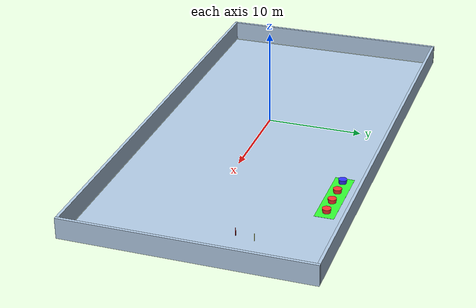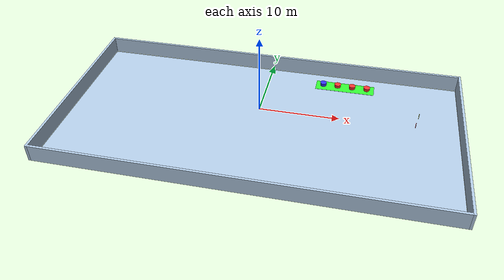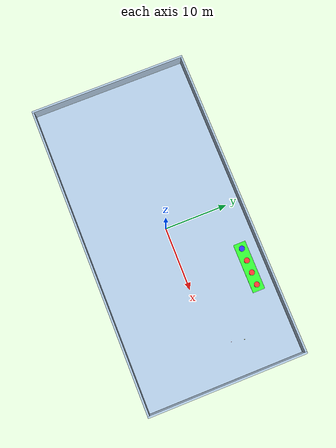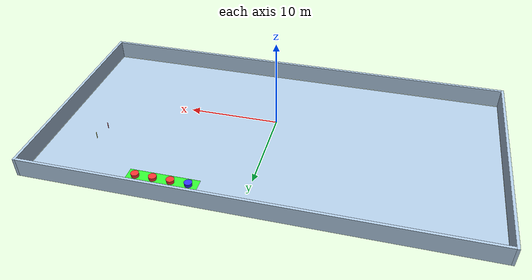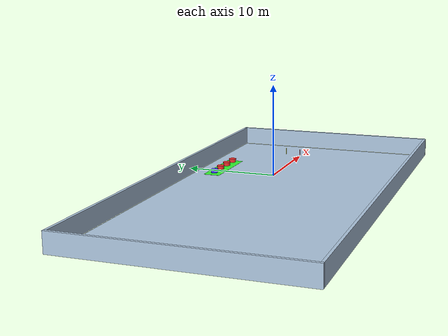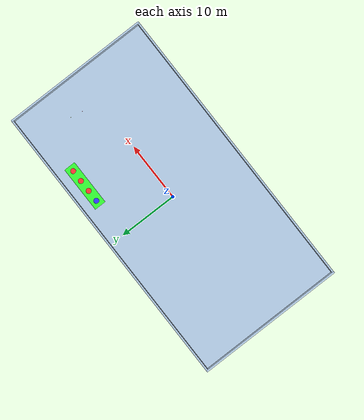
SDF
<sdf version="1.8">
 <world name="pool_world">
  <plugin filename="ignition-gazebo-physics-system" name="gz::sim::systems::Physics"/>
  <plugin filename="ignition-gazebo-user-commands-system" name="gz::sim::systems::UserCommands"/>
  <plugin filename="ignition-gazebo-scene-broadcaster-system" name="gz::sim::systems::SceneBroadcaster"/>
  <plugin filename="ignition-gazebo-sensors-system" name="gz::sim::systems::Sensors">
   <render_engine>ogre2</render_engine>
  </plugin>
  <plugin filename="ignition-gazebo-imu-system" name="gz::sim::systems::Imu"/>
  <plugin filename="ignition-gazebo-magnetometer-system" name="gz::sim::systems::Magnetometer"/>
  <gravity>0 0 -9.81</gravity>
  <magnetic_field>6e-6 2e-5 -4e-5</magnetic_field>
  <atmosphere type="adiabatic"/>
  <scene><ambient>0.4 0.4 0.45 1</ambient><background>0.85 0.9 1 1</background><shadows>true</shadows></scene>
  <physics name="dart" type="ignition-physics-dartsim">
   <max_step_size>0.001</max_step_size>
   <real_time_factor>1.0</real_time_factor>
   <real_time_update_rate>1000</real_time_update_rate>
  </physics>
  <include><uri>https://fuel.gazebosim.org/1.0/OpenRobotics/models/Sun</uri></include>
  <model name="pool_structure">
   <static>true</static>
   <pose>0 0 -2.2 0 0 0</pose>
   <include><uri>model://pool_ground25</uri></include>
   <link name="wall_x_pos">
    <pose>25.15 0 1.1 0 0 0</pose>
    <collision name="col"><geometry><box><size>0.3 25.6 2.2</size></box></geometry></collision>
    <visual name="vis">
     <geometry><box><size>0.3 25.6 2.2</size></box></geometry>
     <material>
      <ambient>0.7 0.8 0.9 1</ambient>
      <diffuse>0.7 0.8 0.9 1</diffuse>
      <specular>0.3 0.3 0.3 1</specular>
      <emissive>0 0 0 1</emissive>
     </material>
    </visual>
   </link>
   <link name="wall_x_neg">
    <pose>-25.15 0 1.1 0 0 0</pose>
    <collision name="col"><geometry><box><size>0.3 25.6 2.2</size></box></geometry></collision>
    <visual name="vis">
     <geometry><box><size>0.3 25.6 2.2</size></box></geometry>
     <material>
      <ambient>0.7 0.8 0.9 1</ambient>
      <diffuse>0.7 0.8 0.9 1</diffuse>
      <specular>0.3 0.3 0.3 1</specular>
      <emissive>0 0 0 1</emissive>
     </material>
    </visual>
   </link>
   <link name="wall_y_pos">
    <pose>0 12.65 1.1 0 0 0</pose>
    <collision name="col"><geometry><box><size>50 0.3 2.2</size></box></geometry></collision>
    <visual name="vis">
     <geometry><box><size>50 0.3 2.2</size></box></geometry>
     <material>
      <ambient>0.7 0.8 0.9 1</ambient>
      <diffuse>0.7 0.8 0.9 1</diffuse>
      <specular>0.3 0.3 0.3 1</specular>
      <emissive>0 0 0 1</emissive>
     </material>
    </visual>
   </link>
   <link name="wall_y_neg">
    <pose>0 -12.65 1.1 0 0 0</pose>
    <collision name="col"><geometry><box><size>50 0.3 2.2</size></box></geometry></collision>
    <visual name="vis">
     <geometry><box><size>50 0.3 2.2</size></box></geometry>
     <material>
      <ambient>0.7 0.8 0.9 1</ambient>
      <diffuse>0.7 0.8 0.9 1</diffuse>
      <specular>0.3 0.3 0.3 1</specular>
      <emissive>0 0 0 1</emissive>
     </material>
    </visual>
   </link>
  </model>
  <plugin filename="ignition-gazebo-buoyancy-system" name="ignition::gazebo::systems::Buoyancy">
   <graded_buoyancy>
    <default_density>1000</default_density>
    <density_change><above_depth>0</above_depth><density>1</density></density_change>
   </graded_buoyancy>
  </plugin>
  <include><uri>model://orange_flare</uri><pose>7 -3 -2.2 0 -0 0</pose><static>1</static></include>
  <include><uri>model://green_mat</uri><pose>10 10 -2.2 0 -0 0</pose><static>1</static></include>
  <include><uri>model://blue_drum</uri><pose>7 10 -2.2 0 -0 0</pose><static>1</static></include>
  <include>
   <uri>model://red_drum</uri>
   <name>red_drum0</name>
   <pose>9 10 -2.2 0 -0 0</pose>
   <static>1</static>
  </include>
  <include>
   <uri>model://red_drum</uri>
   <name>red_drum1</name>
   <pose>11 10 -2.2 0 -0 0</pose>
   <static>1</static>
  </include>
  <include>
   <uri>model://red_drum</uri>
   <name>red_drum2</name>
   <pose>13 10 -2.2 0 -0 0</pose>
   <static>1</static>
  </include>
  <include><uri>model://golf_ball</uri><pose>7 10 -2.2 0 -0 0</pose></include>
  <include><uri>model://yellow_flare</uri><pose>20 5 -2.2 0 -0 0</pose></include>
  <include><uri>model://blue_flare</uri><pose>19.8 4 -2.2 0 -0 0</pose></include>
  <include><uri>model://red_flare</uri><pose>19.6 3 -2.2 0 -0 0</pose></include>
 </world>
</sdf>

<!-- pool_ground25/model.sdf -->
<sdf version="1.7">
  <model name="pool_ground25">
    <static>true</static>

    <link name="pool_floor">
      <collision name="collision">
        <geometry>
          <plane>
            <normal>0 0 1</normal>
            <size>50 25</size>
          </plane>
        </geometry>
        <surface>
          <contact>
            <collide_bitmask>0x01</collide_bitmask>
          </contact>
          <friction>
            <ode>
              <mu>0.8</mu>
              <mu2>0.8</mu2>
            </ode>
          </friction>
        </surface>
      </collision>

      <visual name="visual">
        <geometry>
          <plane>
            <normal>0 0 1</normal>
            <size>50 25</size>
          </plane>
        </geometry>
        <material>
          <!-- Direct texture approach -->
          <ambient>0.7 0.8 0.9 1</ambient>
          <diffuse>0.7 0.8 0.9 1</diffuse>
          <specular>0.3 0.3 0.3 1</specular>
          <emissive>0 0 0 1</emissive>
          <pbr>
            <metal>
              <albedo_map>model://pool_ground25/materials/textures/pool_lanes.png</albedo_map>
            </metal>
          </pbr>
        </material>
      </visual>
    </link>
  </model>
</sdf>

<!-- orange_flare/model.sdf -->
<sdf version='1.7'>
  <model name='orange_flare'>
    <link name='link'>
      <inertial>
        <mass>1</mass>
        <inertia>
          <ixx>0.335626</ixx>
          <ixy>0</ixy>
          <ixz>0</ixz>
          <iyy>0.335626</iyy>
          <iyz>0</iyz>
          <izz>0.326156</izz>
        </inertia>
        <pose>0 0 0 0 -0 0</pose>
      </inertial>
      <self_collide>0</self_collide>
      <enable_wind>0</enable_wind>
      <kinematic>0</kinematic>
      <pose>0 0 0 0 -0 0</pose>
      <gravity>1</gravity>
      <visual name='visual'>
        <geometry>
          <cylinder>
            <radius>0.075</radius>
            <length>1.5</length>
          </cylinder>
        </geometry>
        <material>
          <ambient>1 0.2 0 1</ambient>
          <diffuse>1 0.2 0 1</diffuse>
          <specular>1 0.2 0 1</specular>
        </material>
        <pose>0 0 -1.25 0 -0 0</pose>
        <transparency>0</transparency>
        <cast_shadows>1</cast_shadows>
      </visual>
      <collision name='collision'>
        <laser_retro>0</laser_retro>
        <max_contacts>10</max_contacts>
        <pose>0 0 -1.25 0 -0 0</pose>
        <geometry>
          <cylinder>
            <radius>0.075</radius>
            <length>1.5</length>
          </cylinder>
        </geometry>
        <surface>
          <friction>
            <ode>
              <mu>1</mu>
              <mu2>1</mu2>
              <fdir1>0 0 0</fdir1>
              <slip1>0</slip1>
              <slip2>0</slip2>
            </ode>
            <torsional>
              <coefficient>1</coefficient>
              <patch_radius>0</patch_radius>
              <surface_radius>0</surface_radius>
              <use_patch_radius>1</use_patch_radius>
              <ode>
                <slip>0</slip>
              </ode>
            </torsional>
          </friction>
          <bounce>
            <restitution_coefficient>0</restitution_coefficient>
            <threshold>1e+06</threshold>
          </bounce>
          <contact>
            <collide_without_contact>0</collide_without_contact>
            <collide_without_contact_bitmask>1</collide_without_contact_bitmask>
            <collide_bitmask>1</collide_bitmask>
            <ode>
              <soft_cfm>0</soft_cfm>
              <soft_erp>0.2</soft_erp>
              <kp>1e+13</kp>
              <kd>1</kd>
              <max_vel>0.01</max_vel>
              <min_depth>0</min_depth>
            </ode>
            <bullet>
              <split_impulse>1</split_impulse>
              <split_impulse_penetration_threshold>-0.01</split_impulse_penetration_threshold>
              <soft_cfm>0</soft_cfm>
              <soft_erp>0.2</soft_erp>
              <kp>1e+13</kp>
              <kd>1</kd>
            </bullet>
          </contact>
        </surface>
      </collision>
    </link>
    <static>1</static>
    <allow_auto_disable>1</allow_auto_disable>
  </model>
</sdf>

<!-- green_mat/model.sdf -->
<sdf version='1.7'>
  <model name='green_mat'>
    <link name='link_1'>
      <inertial>
        <mass>1</mass>
        <inertia>
          <ixx>0.166667</ixx>
          <ixy>0</ixy>
          <ixz>0</ixz>
          <iyy>0.166667</iyy>
          <iyz>0</iyz>
          <izz>0.166667</izz>
        </inertia>
        <pose>0 0 0 0 -0 0</pose>
      </inertial>
      <pose>0 0 0 0 -0 0</pose>
      <gravity>1</gravity>
      <self_collide>0</self_collide>
      <kinematic>0</kinematic>
      <enable_wind>0</enable_wind>
      <visual name='visual'>
        <pose>0 0 0 0 -0 0</pose>
        <geometry>
          <box>
            <size>8 2 0.01</size>
          </box>
        </geometry>
        <material>
          <ambient>0.1 0.5 0.1 1</ambient>
          <diffuse>0.2 1 0.2 1</diffuse>
          <specular>0.01 0.01 0.01 1</specular>
          <emissive>0 0 0 1</emissive>
        </material>
        <transparency>0</transparency>
        <cast_shadows>1</cast_shadows>
      </visual>
      <collision name='collision'>
        <laser_retro>0</laser_retro>
        <max_contacts>10</max_contacts>
        <pose>0 0 0 0 -0 0</pose>
        <geometry>
          <box>
            <size>8 2 0.01</size>
          </box>
        </geometry>
        <surface>
          <friction>
            <ode>
              <mu>1</mu>
              <mu2>1</mu2>
              <fdir1>0 0 0</fdir1>
              <slip1>0</slip1>
              <slip2>0</slip2>
            </ode>
            <torsional>
              <coefficient>1</coefficient>
              <patch_radius>0</patch_radius>
              <surface_radius>0</surface_radius>
              <use_patch_radius>1</use_patch_radius>
              <ode>
                <slip>0</slip>
              </ode>
            </torsional>
          </friction>
          <bounce>
            <restitution_coefficient>0</restitution_coefficient>
            <threshold>1e+06</threshold>
          </bounce>
          <contact>
            <collide_without_contact>0</collide_without_contact>
            <collide_without_contact_bitmask>1</collide_without_contact_bitmask>
            <collide_bitmask>1</collide_bitmask>
            <ode>
              <soft_cfm>0</soft_cfm>
              <soft_erp>0.2</soft_erp>
              <kp>1e+13</kp>
              <kd>1</kd>
              <max_vel>0.01</max_vel>
              <min_depth>0</min_depth>
            </ode>
            <bullet>
              <split_impulse>1</split_impulse>
              <split_impulse_penetration_threshold>-0.01</split_impulse_penetration_threshold>
              <soft_cfm>0</soft_cfm>
              <soft_erp>0.2</soft_erp>
              <kp>1e+13</kp>
              <kd>1</kd>
            </bullet>
          </contact>
        </surface>
      </collision>
    </link>
    <static>1</static>
    <allow_auto_disable>1</allow_auto_disable>
  </model>
</sdf>

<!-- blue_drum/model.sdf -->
<sdf version='1.7'>
  <model name='blue_drum'>
    <link name='link_1'>
      <inertial>
        <mass>1</mass>
        <inertia>
          <ixx>0.166667</ixx>
          <ixy>0</ixy>
          <ixz>0</ixz>
          <iyy>0.166667</iyy>
          <iyz>0</iyz>
          <izz>0.166667</izz>
        </inertia>
        <pose>0 0 0 0 -0 0</pose>
      </inertial>
      <pose>0 0 0 1.5708 -0 0</pose>
      <gravity>1</gravity>
      <self_collide>0</self_collide>
      <kinematic>0</kinematic>
      <enable_wind>0</enable_wind>
      <visual name='visual'>
        <pose>0 0 0 0 -0 0</pose>
        <geometry>
          <mesh>
            <uri>model://blue_drum/meshes/drum.obj</uri>
            <scale>0.4 0.4 0.4</scale>
          </mesh>
        </geometry>
        <material>
          <lighting>1</lighting>
          <script>
            <uri>file://media/materials/scripts/gazebo.material</uri>
            <name>Gazebo/Grey</name>
          </script>
          <shader type='pixel'>
            <normal_map>__default__</normal_map>
          </shader>
          <ambient>0.1 0.1 0.5 1</ambient>
          <diffuse>0.2 0.2 1 1</diffuse>
          <specular>0.01 0.01 0.01 1</specular>
          <emissive>0 0 0 1</emissive>
        </material>
        <transparency>0</transparency>
        <cast_shadows>1</cast_shadows>
      </visual>
      <collision name='collision'>
        <laser_retro>0</laser_retro>
        <max_contacts>10</max_contacts>
        <pose>0 0 0 0 -0 0</pose>
        <geometry>
          <mesh>
            <uri>model://blue_drum/meshes/drum.obj</uri>
            <scale>0.4 0.4 0.4</scale>
          </mesh>
        </geometry>
        <surface>
          <friction>
            <ode>
              <mu>1</mu>
              <mu2>1</mu2>
              <fdir1>0 0 0</fdir1>
              <slip1>0</slip1>
              <slip2>0</slip2>
            </ode>
            <torsional>
              <coefficient>1</coefficient>
              <patch_radius>0</patch_radius>
              <surface_radius>0</surface_radius>
              <use_patch_radius>1</use_patch_radius>
              <ode>
                <slip>0</slip>
              </ode>
            </torsional>
          </friction>
          <bounce>
            <restitution_coefficient>0</restitution_coefficient>
            <threshold>1e+06</threshold>
          </bounce>
          <contact>
            <collide_without_contact>0</collide_without_contact>
            <collide_without_contact_bitmask>1</collide_without_contact_bitmask>
            <collide_bitmask>1</collide_bitmask>
            <ode>
              <soft_cfm>0</soft_cfm>
              <soft_erp>0.2</soft_erp>
              <kp>1e+13</kp>
              <kd>1</kd>
              <max_vel>0.01</max_vel>
              <min_depth>0</min_depth>
            </ode>
            <bullet>
              <split_impulse>1</split_impulse>
              <split_impulse_penetration_threshold>-0.01</split_impulse_penetration_threshold>
              <soft_cfm>0</soft_cfm>
              <soft_erp>0.2</soft_erp>
              <kp>1e+13</kp>
              <kd>1</kd>
            </bullet>
          </contact>
        </surface>
      </collision>
    </link>
    <static>1</static>
    <allow_auto_disable>1</allow_auto_disable>
  </model>
</sdf>

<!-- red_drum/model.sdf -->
<sdf version='1.7'>
  <model name='red_drum'>
    <link name='link_2'>
      <inertial>
        <mass>1</mass>
        <inertia>
          <ixx>0.166667</ixx>
          <ixy>0</ixy>
          <ixz>0</ixz>
          <iyy>0.166667</iyy>
          <iyz>0</iyz>
          <izz>0.166667</izz>
        </inertia>
        <pose>0 0 0 0 -0 0</pose>
      </inertial>
      <pose>0 0 0 1.5708 -0 0</pose>
      <gravity>1</gravity>
      <self_collide>0</self_collide>
      <kinematic>0</kinematic>
      <enable_wind>0</enable_wind>
      <visual name='visual'>
        <pose>0 0 0 0 -0 0</pose>
        <geometry>
          <mesh>
            <uri>model://blue_drum/meshes/drum.obj</uri>
            <scale>0.4 0.4 0.4</scale>
          </mesh>
        </geometry>
        <material>
          <lighting>1</lighting>
          <script>
            <uri>file://media/materials/scripts/gazebo.material</uri>
            <name>Gazebo/Grey</name>
          </script>
          <shader type='pixel'>
            <normal_map>__default__</normal_map>
          </shader>
          <ambient>0.5 0.1 0.1 1</ambient>
          <diffuse>1 0.2 0.2 1</diffuse>
          <specular>0.01 0.01 0.01 1</specular>
          <emissive>0 0 0 1</emissive>
        </material>
        <transparency>0</transparency>
        <cast_shadows>1</cast_shadows>
      </visual>
      <collision name='collision'>
        <laser_retro>0</laser_retro>
        <max_contacts>10</max_contacts>
        <pose>0 0 0 0 -0 0</pose>
        <geometry>
          <mesh>
            <uri>model://blue_drum/meshes/drum.obj</uri>
            <scale>0.4 0.4 0.4</scale>
          </mesh>
        </geometry>
        <surface>
          <friction>
            <ode>
              <mu>1</mu>
              <mu2>1</mu2>
              <fdir1>0 0 0</fdir1>
              <slip1>0</slip1>
              <slip2>0</slip2>
            </ode>
            <torsional>
              <coefficient>1</coefficient>
              <patch_radius>0</patch_radius>
              <surface_radius>0</surface_radius>
              <use_patch_radius>1</use_patch_radius>
              <ode>
                <slip>0</slip>
              </ode>
            </torsional>
          </friction>
          <bounce>
            <restitution_coefficient>0</restitution_coefficient>
            <threshold>1e+06</threshold>
          </bounce>
          <contact>
            <collide_without_contact>0</collide_without_contact>
            <collide_without_contact_bitmask>1</collide_without_contact_bitmask>
            <collide_bitmask>1</collide_bitmask>
            <ode>
              <soft_cfm>0</soft_cfm>
              <soft_erp>0.2</soft_erp>
              <kp>1e+13</kp>
              <kd>1</kd>
              <max_vel>0.01</max_vel>
              <min_depth>0</min_depth>
            </ode>
            <bullet>
              <split_impulse>1</split_impulse>
              <split_impulse_penetration_threshold>-0.01</split_impulse_penetration_threshold>
              <soft_cfm>0</soft_cfm>
              <soft_erp>0.2</soft_erp>
              <kp>1e+13</kp>
              <kd>1</kd>
            </bullet>
          </contact>
        </surface>
      </collision>
    </link>
    <static>1</static>
    <allow_auto_disable>1</allow_auto_disable>
  </model>
</sdf>

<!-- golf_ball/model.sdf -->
<sdf version='1.7'>
  <model name='golf_ball'>
    <link name='link_0'>
      <inertial>
        <mass>0.0460639</mass>
        <inertia>
          <ixx>8.4e-06</ixx>
          <ixy>0</ixy>
          <ixz>0</ixz>
          <iyy>8.4e-06</iyy>
          <iyz>0</iyz>
          <izz>8.4e-06</izz>
        </inertia>
        <pose>0 0 0 0 -0 0</pose>
      </inertial>
      <pose>0 0 0.3 0 -0 0</pose>
      <gravity>1</gravity>
      <self_collide>0</self_collide>
      <kinematic>0</kinematic>
      <enable_wind>0</enable_wind>
      <visual name='visual'>
        <pose>0 0 0 0 -0 0</pose>
        <geometry>
          <sphere>
            <radius>0.02135</radius>
          </sphere>
        </geometry>
        <material>
          <lighting>1</lighting>
          <script>
            <uri>file://media/materials/scripts/gazebo.material</uri>
            <name>Gazebo/Grey</name>
          </script>
          <shader type='pixel'>
            <normal_map>__default__</normal_map>
          </shader>
          <ambient>1 1 1 1</ambient>
          <diffuse>1 1 1 1</diffuse>
          <specular>1 1 1 1</specular>
          <emissive>0 0 0 1</emissive>
        </material>
        <transparency>0</transparency>
        <cast_shadows>1</cast_shadows>
      </visual>
      <collision name='collision'>
        <laser_retro>0</laser_retro>
        <max_contacts>10</max_contacts>
        <pose>0 0 0 0 -0 0</pose>
        <geometry>
          <sphere>
            <radius>0.02135</radius>
          </sphere>
        </geometry>
        <surface>
          <friction>
            <ode>
              <mu>1</mu>
              <mu2>1</mu2>
              <fdir1>0 0 0</fdir1>
              <slip1>0</slip1>
              <slip2>0</slip2>
            </ode>
            <torsional>
              <coefficient>1</coefficient>
              <patch_radius>0</patch_radius>
              <surface_radius>0</surface_radius>
              <use_patch_radius>1</use_patch_radius>
              <ode>
                <slip>0</slip>
              </ode>
            </torsional>
          </friction>
          <bounce>
            <restitution_coefficient>0</restitution_coefficient>
            <threshold>1e+06</threshold>
          </bounce>
          <contact>
            <collide_without_contact>0</collide_without_contact>
            <collide_without_contact_bitmask>1</collide_without_contact_bitmask>
            <collide_bitmask>1</collide_bitmask>
            <ode>
              <soft_cfm>0</soft_cfm>
              <soft_erp>0.2</soft_erp>
              <kp>1e+13</kp>
              <kd>1</kd>
              <max_vel>0.01</max_vel>
              <min_depth>0</min_depth>
            </ode>
            <bullet>
              <split_impulse>1</split_impulse>
              <split_impulse_penetration_threshold>-0.01</split_impulse_penetration_threshold>
              <soft_cfm>0</soft_cfm>
              <soft_erp>0.2</soft_erp>
              <kp>1e+13</kp>
              <kd>1</kd>
            </bullet>
          </contact>
        </surface>
      </collision>
    </link>
    <static>0</static>
    <allow_auto_disable>1</allow_auto_disable>
  </model>
</sdf>

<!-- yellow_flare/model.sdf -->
<sdf version='1.7'>
  <model name='yellow_flare'>
    <link name='link'>
      <inertial>
        <mass>1</mass>
        <inertia>
          <ixx>0.145833</ixx>
          <ixy>0</ixy>
          <ixz>0</ixz>
          <iyy>0.145833</iyy>
          <iyz>0</iyz>
          <izz>0.125</izz>
        </inertia>
        <pose>0 0 0 0 0 0</pose>
      </inertial>
      <self_collide>0</self_collide>
      <enable_wind>0</enable_wind>
      <kinematic>0</kinematic>
      <pose>0 0 0.4 0 0 0</pose>
      <gravity>1</gravity>
      <visual name='visual'>
        <geometry>
          <cylinder>
            <radius>0.03</radius>
            <length>0.8</length>
          </cylinder>
        </geometry>
        <material>
          <ambient>1 1 0 1</ambient>
          <diffuse>0.7 0.7 0.0 1</diffuse>
          <specular>0.01 0.01 0.00 1</specular>
          <emissive>0 0 0 1</emissive>
        </material>
        <pose>0 0 0 0 -0 0</pose>
        <transparency>0</transparency>
        <cast_shadows>1</cast_shadows>
      </visual>
      <collision name='collision1'>
        <laser_retro>0</laser_retro>
        <max_contacts>10</max_contacts>
        <pose>0 0 0 0 -0 0</pose>
        <geometry>
          <cylinder>
            <radius>0.03</radius>
            <length>0.8</length>
          </cylinder>
        </geometry>
        <surface>
          <friction>
            <ode>
              <mu>1</mu>
              <mu2>1</mu2>
              <fdir1>0 0 0</fdir1>
              <slip1>0</slip1>
              <slip2>0</slip2>
            </ode>
            <torsional>
              <coefficient>1</coefficient>
              <patch_radius>0</patch_radius>
              <surface_radius>0</surface_radius>
              <use_patch_radius>1</use_patch_radius>
              <ode>
                <slip>0</slip>
              </ode>
            </torsional>
          </friction>
          <bounce>
            <restitution_coefficient>0</restitution_coefficient>
            <threshold>1e+06</threshold>
          </bounce>
          <contact>
            <collide_without_contact>0</collide_without_contact>
            <collide_without_contact_bitmask>1</collide_without_contact_bitmask>
            <collide_bitmask>1</collide_bitmask>
            <ode>
              <soft_cfm>0</soft_cfm>
              <soft_erp>0.2</soft_erp>
              <kp>1e+13</kp>
              <kd>1</kd>
              <max_vel>0.01</max_vel>
              <min_depth>0</min_depth>
            </ode>
            <bullet>
              <split_impulse>1</split_impulse>
              <split_impulse_penetration_threshold>-0.01</split_impulse_penetration_threshold>
              <soft_cfm>0</soft_cfm>
              <soft_erp>0.2</soft_erp>
              <kp>1e+13</kp>
              <kd>1</kd>
            </bullet>
          </contact>
        </surface>
      </collision>
      <collision name='collision2'>
        <laser_retro>0</laser_retro>
        <max_contacts>10</max_contacts>
        <pose>0 0 -0.39 0 0 -0</pose>
        <geometry>
          <cylinder>
            <radius>0.08</radius>
            <length>0.02</length>
          </cylinder>
        </geometry>
        <surface>
          <friction>
            <ode>
              <mu>1</mu>
              <mu2>1</mu2>
              <fdir1>0 0 0</fdir1>
              <slip1>0</slip1>
              <slip2>0</slip2>
            </ode>
            <torsional>
              <coefficient>1</coefficient>
              <patch_radius>0</patch_radius>
              <surface_radius>0</surface_radius>
              <use_patch_radius>1</use_patch_radius>
              <ode>
                <slip>0</slip>
              </ode>
            </torsional>
          </friction>
          <bounce>
            <restitution_coefficient>0</restitution_coefficient>
            <threshold>1e+06</threshold>
          </bounce>
          <contact>
            <collide_without_contact>0</collide_without_contact>
            <collide_without_contact_bitmask>1</collide_without_contact_bitmask>
            <collide_bitmask>1</collide_bitmask>
            <ode>
              <soft_cfm>0</soft_cfm>
              <soft_erp>0.2</soft_erp>
              <kp>1e+13</kp>
              <kd>1</kd>
              <max_vel>0.01</max_vel>
              <min_depth>0</min_depth>
            </ode>
            <bullet>
              <split_impulse>1</split_impulse>
              <split_impulse_penetration_threshold>-0.01</split_impulse_penetration_threshold>
              <soft_cfm>0</soft_cfm>
              <soft_erp>0.2</soft_erp>
              <kp>1e+13</kp>
              <kd>1</kd>
            </bullet>
          </contact>
        </surface>
      </collision>
    </link>
    <static>0</static>
    <allow_auto_disable>1</allow_auto_disable>
  </model>
</sdf>

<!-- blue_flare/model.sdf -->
<sdf version='1.7'>
  <model name='blue_flare'>
    <link name='link'>
      <inertial>
        <mass>1</mass>
        <inertia>
          <ixx>0.335626</ixx>
          <ixy>0</ixy>
          <ixz>0</ixz>
          <iyy>0.335626</iyy>
          <iyz>0</iyz>
          <izz>0.326156</izz>
        </inertia>
        <pose>0 0 0 0 -0 0</pose>
      </inertial>
      <self_collide>0</self_collide>
      <enable_wind>0</enable_wind>
      <kinematic>0</kinematic>
      <pose>0 0 0 0 -0 0</pose>
      <gravity>1</gravity>
      <visual name='visual'>
        <geometry>
          <cylinder>
            <radius>0.075</radius>
            <length>1.5</length>
          </cylinder>
        </geometry>
        <material>
          <ambient>0.01 0.71 0.01 1</ambient>
          <diffuse>0.01 0.71 0.01 1</diffuse>
          <specular>0.01 0.71 0.01 1</specular>
        </material>
        <pose>0 0 -1.25 0 -0 0</pose>
        <transparency>0</transparency>
        <cast_shadows>1</cast_shadows>
      </visual>
      <collision name='collision'>
        <laser_retro>0</laser_retro>
        <max_contacts>10</max_contacts>
        <pose>0 0 -1.25 0 -0 0</pose>
        <geometry>
          <cylinder>
            <radius>0.075</radius>
            <length>1.5</length>
          </cylinder>
        </geometry>
        <surface>
          <friction>
            <ode>
              <mu>1</mu>
              <mu2>1</mu2>
              <fdir1>0 0 0</fdir1>
              <slip1>0</slip1>
              <slip2>0</slip2>
            </ode>
            <torsional>
              <coefficient>1</coefficient>
              <patch_radius>0</patch_radius>
              <surface_radius>0</surface_radius>
              <use_patch_radius>1</use_patch_radius>
              <ode>
                <slip>0</slip>
              </ode>
            </torsional>
          </friction>
          <bounce>
            <restitution_coefficient>0</restitution_coefficient>
            <threshold>1e+06</threshold>
          </bounce>
          <contact>
            <collide_without_contact>0</collide_without_contact>
            <collide_without_contact_bitmask>1</collide_without_contact_bitmask>
            <collide_bitmask>1</collide_bitmask>
            <ode>
              <soft_cfm>0</soft_cfm>
              <soft_erp>0.2</soft_erp>
              <kp>1e+13</kp>
              <kd>1</kd>
              <max_vel>0.01</max_vel>
              <min_depth>0</min_depth>
            </ode>
            <bullet>
              <split_impulse>1</split_impulse>
              <split_impulse_penetration_threshold>-0.01</split_impulse_penetration_threshold>
              <soft_cfm>0</soft_cfm>
              <soft_erp>0.2</soft_erp>
              <kp>1e+13</kp>
              <kd>1</kd>
            </bullet>
          </contact>
        </surface>
      </collision>
    </link>
    <static>1</static>
    <allow_auto_disable>1</allow_auto_disable>
  </model>
</sdf>

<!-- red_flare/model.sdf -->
<sdf version='1.7'>
  <model name='red_flare'>
    <link name='link'>
      <inertial>
        <mass>1</mass>
        <inertia>
          <ixx>0.335626</ixx>
          <ixy>0</ixy>
          <ixz>0</ixz>
          <iyy>0.335626</iyy>
          <iyz>0</iyz>
          <izz>0.326156</izz>
        </inertia>
        <pose>0 0 0 0 -0 0</pose>
      </inertial>
      <self_collide>0</self_collide>
      <enable_wind>0</enable_wind>
      <kinematic>0</kinematic>
      <pose>0 0 0.4 0 -0 0</pose>
      <gravity>1</gravity>
      <visual name='visual'>
        <geometry>
          <cylinder>
            <radius>0.03</radius>
            <length>0.8</length>
          </cylinder>
        </geometry>
        <material>
          <ambient>0.7 0.01 0.01 1</ambient>
          <diffuse>0.7 0.01 0.01 1</diffuse>
          <specular>0.7 0.01 0.01 1</specular>
        </material>
        <pose>0 0 0 0 -0 0</pose>
        <transparency>0</transparency>
        <cast_shadows>1</cast_shadows>
      </visual>
      <collision name='collision'>
        <laser_retro>0</laser_retro>
        <max_contacts>10</max_contacts>
        <pose>0 0 0 0 -0 0</pose>
        <geometry>
          <cylinder>
            <radius>0.03</radius>
            <length>0.8</length>
          </cylinder>
        </geometry>
        <surface>
          <friction>
            <ode>
              <mu>1</mu>
              <mu2>1</mu2>
              <fdir1>0 0 0</fdir1>
              <slip1>0</slip1>
              <slip2>0</slip2>
            </ode>
            <torsional>
              <coefficient>1</coefficient>
              <patch_radius>0</patch_radius>
              <surface_radius>0</surface_radius>
              <use_patch_radius>1</use_patch_radius>
              <ode>
                <slip>0</slip>
              </ode>
            </torsional>
          </friction>
          <bounce>
            <restitution_coefficient>0</restitution_coefficient>
            <threshold>1e+06</threshold>
          </bounce>
          <contact>
            <collide_without_contact>0</collide_without_contact>
            <collide_without_contact_bitmask>1</collide_without_contact_bitmask>
            <collide_bitmask>1</collide_bitmask>
            <ode>
              <soft_cfm>0</soft_cfm>
              <soft_erp>0.2</soft_erp>
              <kp>1e+13</kp>
              <kd>1</kd>
              <max_vel>0.01</max_vel>
              <min_depth>0</min_depth>
            </ode>
            <bullet>
              <split_impulse>1</split_impulse>
              <split_impulse_penetration_threshold>-0.01</split_impulse_penetration_threshold>
              <soft_cfm>0</soft_cfm>
              <soft_erp>0.2</soft_erp>
              <kp>1e+13</kp>
              <kd>1</kd>
            </bullet>
          </contact>
        </surface>
      </collision>
    </link>
    <static>1</static>
    <allow_auto_disable>1</allow_auto_disable>
  </model>
</sdf>
